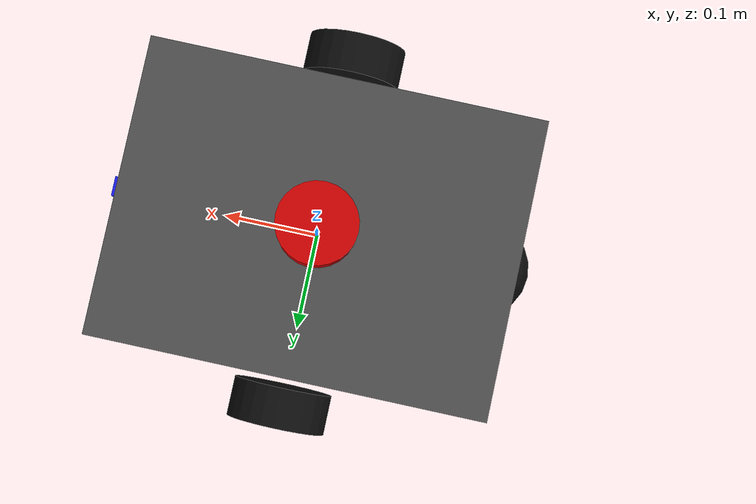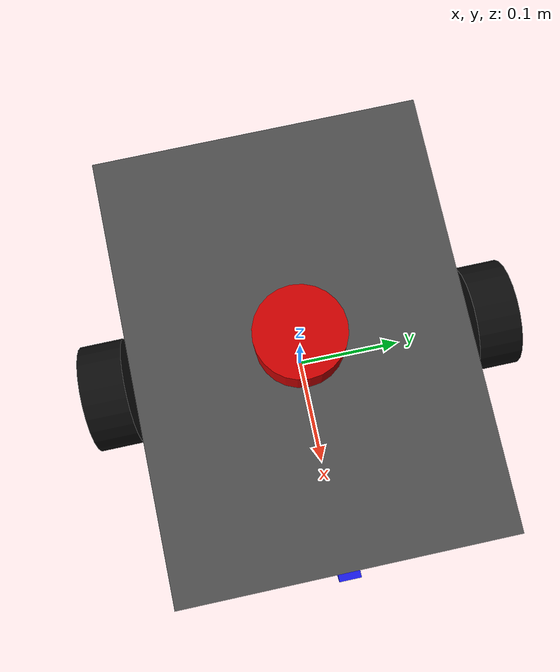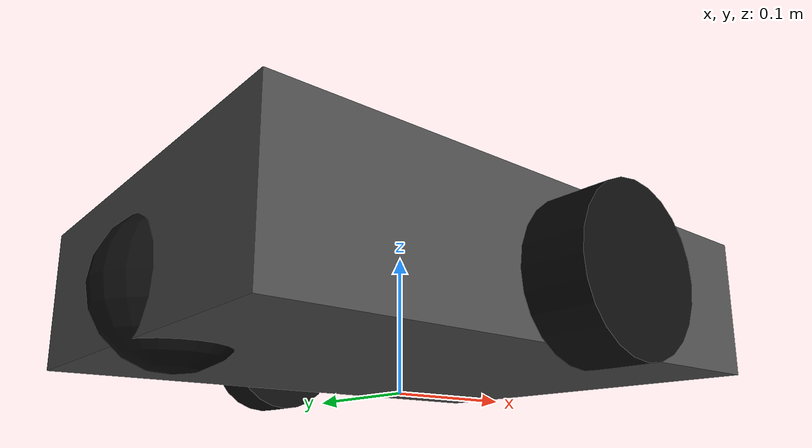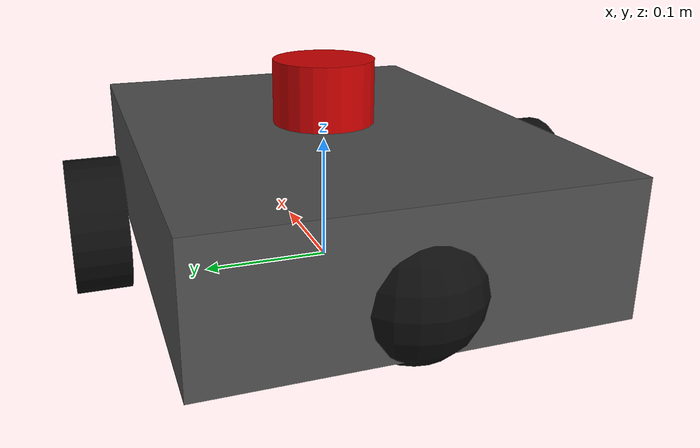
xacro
<?xml version="1.0"?>
<robot name="diffbot" xmlns:xacro="http://www.ros.org/wiki/xacro">

  <!-- ================= PARAMETERS ================= -->
  <xacro:property name="chassis_length" value="0.40"/>
  <xacro:property name="chassis_width"  value="0.30"/>
  <xacro:property name="chassis_height" value="0.10"/>
  <xacro:property name="chassis_mass"   value="5.0"/>

  <xacro:property name="wheel_radius"   value="0.05"/>
  <xacro:property name="wheel_width"    value="0.04"/>
  <xacro:property name="wheel_mass"     value="0.5"/>
  <xacro:property name="wheel_y_offset" value="0.18"/>

  <xacro:property name="caster_radius"  value="0.05"/>
  <xacro:property name="caster_mass"    value="0.2"/>
  <xacro:property name="caster_x_offset" value="0.17"/>

  <xacro:property name="lidar_radius"   value="0.04"/>
  <xacro:property name="lidar_height"   value="0.05"/>

  <xacro:property name="camera_size"    value="0.02"/>
  <xacro:property name="chassis_z_offset" value="0.015"/>

  <material name="chassis_grey"><color rgba="0.3 0.3 0.3 1.0"/></material>
  <material name="wheel_black"><color rgba="0.05 0.05 0.05 1.0"/></material>
  <material name="lidar_red"><color rgba="0.8 0.0 0.0 1.0"/></material>
  <material name="camera_blue"><color rgba="0.1 0.1 0.9 1.0"/></material>

  <!-- ================= INERTIA MACROS ================= -->
  <xacro:macro name="box_inertia" params="mass x y z">
    <inertia ixx="${mass/12.0*(y*y+z*z)}" ixy="0.0" ixz="0.0"
             iyy="${mass/12.0*(x*x+z*z)}" iyz="0.0"
             izz="${mass/12.0*(x*x+y*y)}"/>
  </xacro:macro>

  <xacro:macro name="cylinder_inertia" params="mass r h">
    <inertia ixx="${mass/12.0*(3*r*r+h*h)}" ixy="0.0" ixz="0.0"
             iyy="${mass/12.0*(3*r*r+h*h)}" iyz="0.0"
             izz="${mass/2.0*r*r}"/>
  </xacro:macro>

  <xacro:macro name="sphere_inertia" params="mass r">
    <inertia ixx="${2.0/5.0*mass*r*r}" ixy="0.0" ixz="0.0"
             iyy="${2.0/5.0*mass*r*r}" iyz="0.0"
             izz="${2.0/5.0*mass*r*r}"/>
  </xacro:macro>

  <!-- ================= BASE LINK ================= -->
  <link name="base_footprint"/>

  <joint name="base_footprint_joint" type="fixed">
    <parent link="base_footprint"/>
    <child link="base_link"/>
    <origin xyz="0 0 ${wheel_radius}" rpy="0 0 0"/>
  </joint>

  <link name="base_link">
    <visual>
      <origin xyz="0 0 ${chassis_z_offset}" rpy="0 0 0"/>
      <geometry><box size="${chassis_length} ${chassis_width} ${chassis_height}"/></geometry>
      <material name="chassis_grey"/>
    </visual>
    <collision>
      <origin xyz="0 0 ${chassis_z_offset}" rpy="0 0 0"/>
      <geometry><box size="${chassis_length} ${chassis_width} ${chassis_height}"/></geometry>
    </collision>
    <inertial>
      <mass value="${chassis_mass}"/>
      <origin xyz="0 0 ${chassis_z_offset}" rpy="0 0 0"/>
      <xacro:box_inertia mass="${chassis_mass}" x="${chassis_length}" y="${chassis_width}" z="${chassis_height}"/>
    </inertial>
  </link>

  <gazebo reference="base_link">
    <material>Gazebo/Grey</material>
  </gazebo>

  <!-- ================= DRIVE WHEEL MACRO ================= -->
  <xacro:macro name="wheel" params="prefix y_reflect">
    <link name="${prefix}_wheel_link">
      <visual>
        <origin xyz="0 0 0" rpy="${pi/2} 0 0"/>
        <geometry><cylinder radius="${wheel_radius}" length="${wheel_width}"/></geometry>
        <material name="wheel_black"/>
      </visual>
      <collision>
        <origin xyz="0 0 0" rpy="${pi/2} 0 0"/>
        <geometry><cylinder radius="${wheel_radius}" length="${wheel_width}"/></geometry>
      </collision>
      <inertial>
        <mass value="${wheel_mass}"/>
        <origin xyz="0 0 0" rpy="0 0 0"/>
        <xacro:cylinder_inertia mass="${wheel_mass}" r="${wheel_radius}" h="${wheel_width}"/>
      </inertial>
    </link>

    <joint name="${prefix}_wheel_joint" type="continuous">
      <parent link="base_link"/>
      <child link="${prefix}_wheel_link"/>
      <origin xyz="0 ${y_reflect*wheel_y_offset} 0" rpy="0 0 0"/>
      <axis xyz="0 1 0"/>
      <dynamics damping="0.1" friction="0.05"/>
    </joint>

    <gazebo reference="${prefix}_wheel_link">
      <material>Gazebo/Black</material>
      <mu1>1.0</mu1>
      <mu2>1.0</mu2>
      <kp>1000000.0</kp>
      <kd>100.0</kd>
      <minDepth>0.001</minDepth>
    </gazebo>
  </xacro:macro>

  <xacro:wheel prefix="left"  y_reflect="1"/>
  <xacro:wheel prefix="right" y_reflect="-1"/>

  <!-- ================= CASTER WHEEL (rear, passive) ================= -->
  <link name="caster_wheel_link">
    <visual>
      <geometry><sphere radius="${caster_radius}"/></geometry>
      <material name="wheel_black"/>
    </visual>
    <collision>
      <geometry><sphere radius="${caster_radius}"/></geometry>
    </collision>
    <inertial>
      <mass value="${caster_mass}"/>
      <origin xyz="0 0 0" rpy="0 0 0"/>
      <xacro:sphere_inertia mass="${caster_mass}" r="${caster_radius}"/>
    </inertial>
  </link>

  <joint name="caster_wheel_joint" type="fixed">
    <parent link="base_link"/>
    <child link="caster_wheel_link"/>
    <origin xyz="${-caster_x_offset} 0 ${-(wheel_radius-caster_radius)}" rpy="0 0 0"/>
  </joint>

  <gazebo reference="caster_wheel_link">
    <material>Gazebo/Black</material>
    <mu1>0.0</mu1>
    <mu2>0.0</mu2>
    <kp>1000000.0</kp>
    <kd>100.0</kd>
    <minDepth>0.001</minDepth>
  </gazebo>

  <!-- ================= LIDAR (top) ================= -->
  <link name="lidar_link">
    <visual>
      <origin xyz="0 0 0" rpy="0 0 0"/>
      <geometry><cylinder radius="${lidar_radius}" length="${lidar_height}"/></geometry>
      <material name="lidar_red"/>
    </visual>
    <collision>
      <origin xyz="0 0 0" rpy="0 0 0"/>
      <geometry><cylinder radius="${lidar_radius}" length="${lidar_height}"/></geometry>
    </collision>
    <inertial>
      <mass value="0.1"/>
      <origin xyz="0 0 0" rpy="0 0 0"/>
      <xacro:cylinder_inertia mass="0.1" r="${lidar_radius}" h="${lidar_height}"/>
    </inertial>
  </link>

  <joint name="lidar_joint" type="fixed">
    <parent link="base_link"/>
    <child link="lidar_link"/>
    <origin xyz="0 0 ${chassis_height/2 + lidar_height/2 + chassis_z_offset}" rpy="0 0 0"/>
  </joint>

  <gazebo reference="lidar_link">
    <sensor name="lidar_sensor" type="gpu_lidar">
      <pose>0 0 0 0 0 0</pose>
      <topic>scan</topic>
      <update_rate>10</update_rate>
      <ray>
        <scan>
          <horizontal>
            <samples>360</samples>
            <resolution>1</resolution>
            <min_angle>-3.14159</min_angle>
            <max_angle>3.14159</max_angle>
          </horizontal>
        </scan>
        <range>
          <min>0.12</min>
          <max>10.0</max>
          <resolution>0.01</resolution>
        </range>
        <noise>
          <type>gaussian</type>
          <mean>0.0</mean>
          <stddev>0.01</stddev>
        </noise>
      </ray>
      <always_on>true</always_on>
      <visualize>true</visualize>
      <gz_frame_id>lidar_link</gz_frame_id>
    </sensor>
  </gazebo>

  <!-- ================= CAMERA (front) ================= -->
  <link name="camera_link">
    <visual>
      <origin xyz="0 0 0" rpy="0 0 0"/>
      <geometry><box size="${camera_size} ${camera_size} ${camera_size}"/></geometry>
      <material name="camera_blue"/>
    </visual>
    <collision>
      <origin xyz="0 0 0" rpy="0 0 0"/>
      <geometry><box size="${camera_size} ${camera_size} ${camera_size}"/></geometry>
    </collision>
    <inertial>
      <mass value="0.05"/>
      <origin xyz="0 0 0" rpy="0 0 0"/>
      <xacro:box_inertia mass="0.05" x="${camera_size}" y="${camera_size}" z="${camera_size}"/>
    </inertial>
  </link>

  <joint name="camera_joint" type="fixed">
    <parent link="base_link"/>
    <child link="camera_link"/>
    <origin xyz="${chassis_length/2} 0 ${chassis_z_offset}" rpy="0 0 0"/>
  </joint>

  <!-- optical frame, REP-103 convention -->
  <link name="camera_optical_link"/>
  <joint name="camera_optical_joint" type="fixed">
    <parent link="camera_link"/>
    <child link="camera_optical_link"/>
    <origin xyz="0 0 0" rpy="${-pi/2} 0 ${-pi/2}"/>
  </joint>

  <gazebo reference="camera_link">
    <sensor name="front_camera" type="camera">
      <pose>0 0 0 0 0 0</pose>
      <topic>camera/image_raw</topic>
      <update_rate>10</update_rate>
      <camera>
        <horizontal_fov>1.047</horizontal_fov>
        <image>
          <width>320</width>
          <height>240</height>
        </image>
        <clip>
          <near>0.05</near>
          <far>50</far>
        </clip>
      </camera>
      <always_on>true</always_on>
      <visualize>true</visualize>
      <gz_frame_id>camera_optical_link</gz_frame_id>
    </sensor>
  </gazebo>

  <!-- ================= ros2_control (diff drive) ================= -->
  <ros2_control name="GazeboSystem" type="system">
    <hardware>
      <plugin>gz_ros2_control/GazeboSimSystem</plugin>
    </hardware>
    <joint name="left_wheel_joint">
      <command_interface name="velocity"/>
      <state_interface name="velocity"/>
      <state_interface name="position"/>
    </joint>
    <joint name="right_wheel_joint">
      <command_interface name="velocity"/>
      <state_interface name="velocity"/>
      <state_interface name="position"/>
    </joint>
  </ros2_control>

  <gazebo>
    <plugin filename="gz_ros2_control-system" name="gz_ros2_control::GazeboSimROS2ControlPlugin">
      <parameters>$(find two_wheel_robot)/config/two_wheel_controllers.yaml</parameters>
      <robot_param>robot_description</robot_param>
      <robot_param_node>robot_state_publisher</robot_param_node>
    </plugin>
  </gazebo>

</robot>
